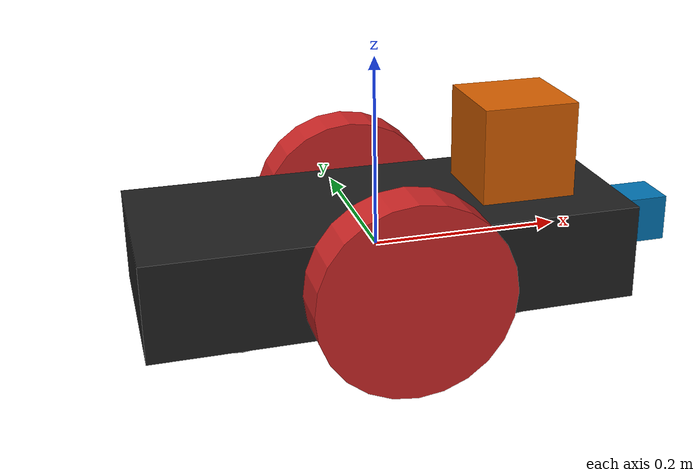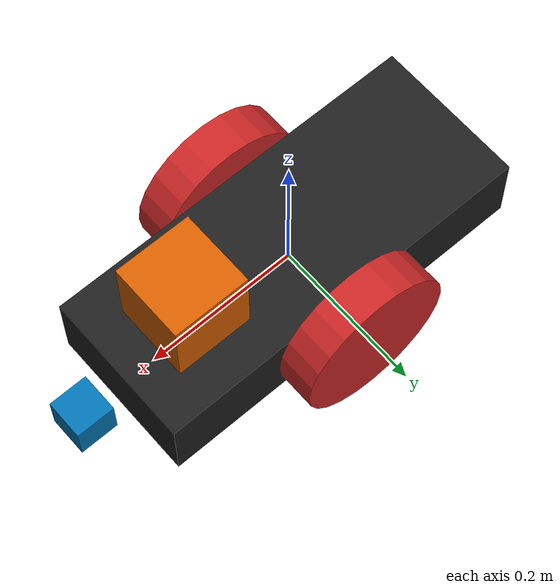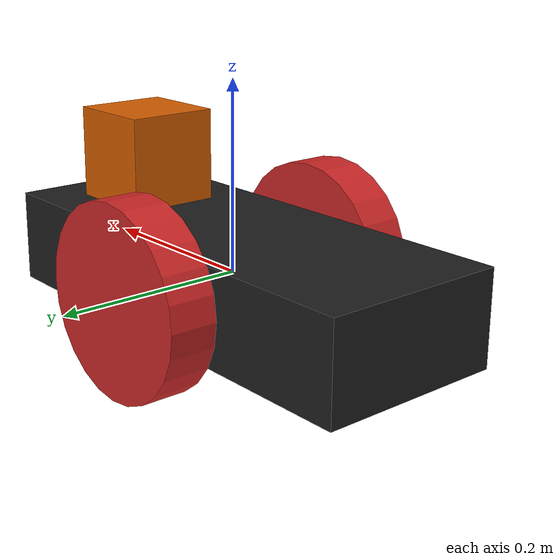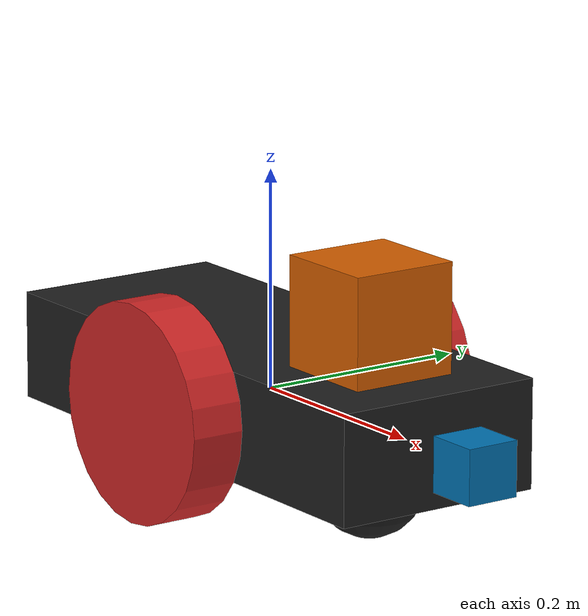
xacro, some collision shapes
<?xml version='1.0'?>

<robot name="my_robot" xmlns:xacro="http://www.ros.org/wiki/xacro">

    <xacro:include filename="$(find my_robot)/urdf/my_robot.gazebo" />

    <gazebo reference="chassis">
        <material>Gazebo/FlatBlack</material>
    </gazebo>
    <gazebo reference="left_wheel">
        <material>Gazebo/Red</material>
    </gazebo>
    <gazebo reference="right_wheel">
        <material>Gazebo/Red</material>
    </gazebo>

    <link name="robot_footprint"></link>

    <joint name="robot_footprint_joint" type="fixed">
        <origin xyz="0 0 0" rpy="0 0 0" />
        <parent link="robot_footprint" />
        <child link="chassis" />
    </joint>

    <joint type="continuous" name="left_wheel_hinge">
        <origin xyz="0 0.125 0" rpy="0 0 0" />
        <child link="left_wheel" />
        <parent link="chassis" />
        <axis xyz="0 1 0" rpy="0 0 0" />
        <limit effort="10000" velocity="1000" />
        <dynamics damping="1.0" friction="1.0" />
    </joint>

    <joint type="continuous" name="right_wheel_hinge">
        <origin xyz="0 -0.125 0" rpy="0 0 0" />
        <child link="right_wheel" />
        <parent link="chassis" />
        <axis xyz="0 1 0" rpy="0 0 0" />
        <limit effort="10000" velocity="1000" />
        <dynamics damping="1.0" friction="1.0" />
    </joint>

    <joint name="camera_joint" type="fixed">
        <origin xyz="0.3 0 0 " rpy="0 0 0 "/>
        <axis xyz="0 1 0" rpy="0 0 0"/>
        <parent link="chassis"/>
        <child link="camera"/>
    </joint>

    <joint name="hokuyo_joint" type="fixed">
        <origin xyz="0.15 0 0.1" rpy="0 0 0"/>
        <axis xyz="0 1 0" rpy="0 0 0"/>
        <child link="hokuyo"/>
        <parent link="chassis"/>
    </joint>

    <link name='chassis'>
        <pose>0 0 0.1 0 0 0</pose>

        <inertial>
            <mass value="15.0" />
            <origin xyz="0.0 0 0" rpy=" 0 0 0" />
            <inertia ixx="0.1" ixy="0" ixz="0" iyy="0.1" iyz="0" izz="0.1" />
        </inertial>

        <collision name='collision'>
            <origin xyz="0 0 0" rpy=" 0 0 0" />
            <geometry>
                <box size=".5 .2 .1" color="red"/>
                <color name="yellow"/>
            </geometry>
        </collision>

        <visual name='chassis_visual'>
            <origin xyz="0 0 0" rpy=" 0 0 0" />
            <geometry>
                <box size=".5 .2 .1" />
            </geometry>
        </visual>

        <collision name='back_caster_collision'>
            <origin xyz="-0.15 0 -0.05" rpy=" 0 0 0" />
            <geometry>
                <sphere radius="0.0499" />
            </geometry>
        </collision>

        <visual name='back_caster_visual'>
            <origin xyz="-0.15 0 -0.05" rpy=" 0 0 0" />
            <geometry>
                <sphere radius="0.05" />
            </geometry>
        </visual>

        <collision name='front_caster_collision'>
            <origin xyz="0.15 0 -0.05" rpy=" 0 0 0" />
            <geometry>
                <sphere radius="0.0499" />
            </geometry>
        </collision>

        <visual name='front_caster_visual'>
            <origin xyz="0.15 0 -0.05" rpy=" 0 0 0" />
            <geometry>
                <sphere radius="0.05" />
            </geometry>
        </visual>

    </link>

    <link name='left_wheel'>
        <visual name='left_wheel_visual'>
            <origin xyz="0 0 0" rpy="0 1.5707 1.5707" />
            <geometry>
                <cylinder radius="0.1" length="0.05" />
            </geometry>
        </visual>

        <collision name='left_wheel_collision'>
            <origin xyz="0 0 0" rpy=" 0 1.5707 1.5707" />
            <geometry>
                <cylinder radius="0.1" length="0.05" />
            </geometry>
        </collision>

        <inertial>
            <mass value="5" />
            <origin xyz="0 0 0" rpy="0 1.5707 1.5707" />
            <inertia ixx="0.1" ixy="0" ixz="0" iyy="0.1" iyz="0" izz="0.1" />
        </inertial>

    </link>

    <link name='right_wheel'>
        <visual name='right_wheel_visual'>
            <origin xyz="0 0 0" rpy="0 1.5707 1.5707" />
            <geometry>
                <cylinder radius="0.1" length="0.05" />
            </geometry>
        </visual>

        <collision name='right_wheel_collision'>
            <origin xyz="0 0 0" rpy=" 0 1.5707 1.5707" />
            <geometry>
                <cylinder radius="0.1" length="0.05" />
            </geometry>
        </collision>

        <inertial>
            <mass value="5" />
            <origin xyz="0 0 0" rpy="0 1.5707 1.5707" />
            <inertia ixx="0.1" ixy="0" ixz="0" iyy="0.1" iyz="0" izz="0.1" />
        </inertial>

    </link>

    <link name="camera">
        <visual name="camera_visual">
            <origin xyz="0 0 0" rpy="0 0 0"></origin>
            <geometry>
                <box size="0.05 0.05 0.05"></box>
            </geometry>
        </visual>

        <collision name="camera_collision">
            <origin xyz="0 0 0" rpy="0 0 0" />

            <geometry>
                <box size="0.05 0.05 0.05"></box>
            </geometry>

        </collision>

        <inertial name="camera_inertial">
            <mass value="0.1"/>
            <origin xyz="0 0 0" rpy="0 0 0"/>
            <inertia  ixx="1e-6" ixy="0" ixz="0" iyy="1e-6" iyz="0" izz="1e-6"/>
        </inertial>

    </link>

    <link name="hokuyo">
        <visual name="hokuyo_visual">
            <origin xyz="0 0 0" rpy="0 0 0"/>
            <geometry>
                <mesh filename="package://my_robot/meshes/hokuyo.dae"/>
            </geometry>
        </visual>

        <collision name="hokuyo_collision">
            <origin xyz="0 0 0" rpy="0 0 0 "/>
            <geometry>
                <box size="0.1 0.1 0.1"/>
            </geometry>
        </collision>

        <inertial name="hokuyo_inertial">
            <mass value="1e-5"/>
            <origin xyz="0 0 0 " rpy="0 0 0"/>
            <inertia ixx="1e-6" ixy="0" ixz="0" iyy="1e-6" iyz="0" izz="1e-6"/>
        </inertial>

    </link>

</robot>
